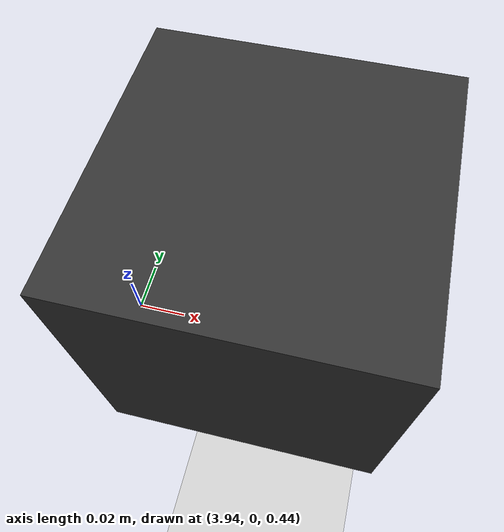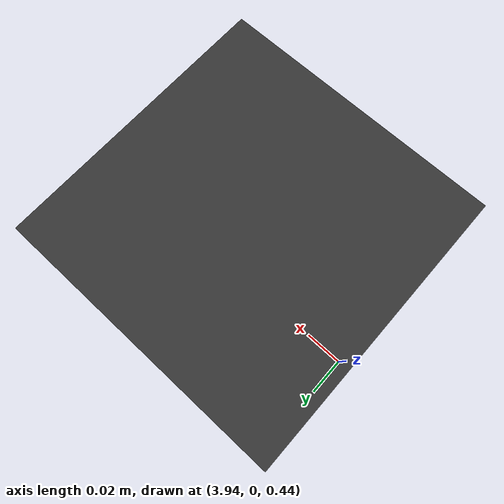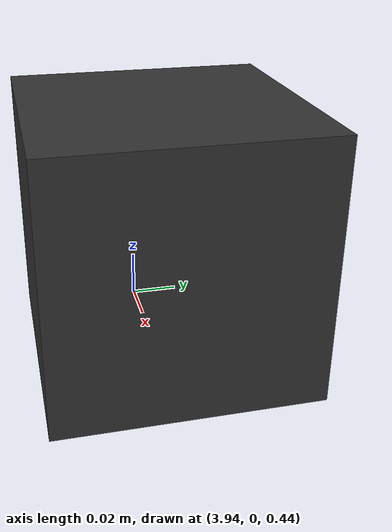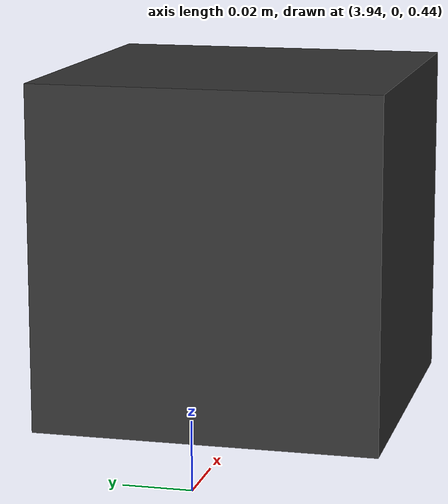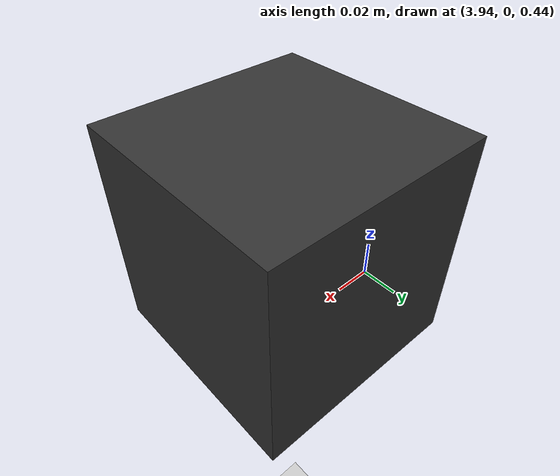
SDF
<?xml version="1.0" ?>
<sdf version="1.6">
  <world name="rgbd_world">

    <physics name="1ms" type="ignored">
      <max_step_size>0.001</max_step_size>
      <real_time_factor>1.0</real_time_factor>
    </physics>

    <plugin filename="gz-sim-physics-system"
            name="gz::sim::systems::Physics"/>
    <plugin filename="gz-sim-sensors-system"
            name="gz::sim::systems::Sensors">
      <render_engine>ogre2</render_engine>
    </plugin>
    <plugin filename="gz-sim-user-commands-system"
            name="gz::sim::systems::UserCommands"/>
    <plugin filename="gz-sim-scene-broadcaster-system"
            name="gz::sim::systems::SceneBroadcaster"/>

    <gui fullscreen="0">
      <plugin filename="MinimalScene" name="3D View">
        <gz-gui>
          <title>3D View</title>
          <property type="bool" key="showTitleBar">false</property>
          <property type="string" key="state">docked</property>
        </gz-gui>
        <engine>ogre2</engine>
        <scene>scene</scene>
        <ambient_light>0.4 0.4 0.4</ambient_light>
        <background_color>0.8 0.8 0.8</background_color>
        <camera_pose>6 -3 3 0 0.4 -2.7</camera_pose>
      </plugin>
      <plugin filename="EntityContextMenuPlugin" name="Entity context menu">
        <gz-gui>
          <property key="state" type="string">floating</property>
          <property key="width" type="double">5</property>
          <property key="height" type="double">5</property>
          <property key="showTitleBar" type="bool">false</property>
        </gz-gui>
      </plugin>
      <plugin filename="GzSceneManager" name="Scene Manager">
        <gz-gui>
          <property key="resizable" type="bool">false</property>
          <property key="width" type="double">5</property>
          <property key="height" type="double">5</property>
          <property key="state" type="string">floating</property>
          <property key="showTitleBar" type="bool">false</property>
        </gz-gui>
      </plugin>
      <plugin filename="InteractiveViewControl" name="Interactive view control">
        <gz-gui>
          <property key="resizable" type="bool">false</property>
          <property key="width" type="double">5</property>
          <property key="height" type="double">5</property>
          <property key="state" type="string">floating</property>
          <property key="showTitleBar" type="bool">false</property>
        </gz-gui>
      </plugin>
      <plugin filename="WorldControl" name="World control">
        <gz-gui>
          <title>World control</title>
          <property type="bool" key="showTitleBar">false</property>
          <property type="bool" key="resizable">false</property>
          <property type="double" key="height">72</property>
          <property type="double" key="z">1</property>
          <property type="string" key="state">floating</property>
          <anchors target="3D View">
            <line own="left" target="left"/>
            <line own="bottom" target="bottom"/>
          </anchors>
        </gz-gui>
        <play_pause>true</play_pause>
        <step>true</step>
        <start_paused>false</start_paused>
        <use_event>true</use_event>
      </plugin>
      <plugin filename="WorldStats" name="World stats">
        <gz-gui>
          <title>World stats</title>
          <property type="bool" key="showTitleBar">false</property>
          <property type="bool" key="resizable">false</property>
          <property type="double" key="height">110</property>
          <property type="double" key="width">290</property>
          <property type="double" key="z">1</property>
          <property type="string" key="state">floating</property>
          <anchors target="3D View">
            <line own="right" target="right"/>
            <line own="bottom" target="bottom"/>
          </anchors>
        </gz-gui>
        <sim_time>true</sim_time>
        <real_time>true</real_time>
        <real_time_factor>true</real_time_factor>
        <iterations>true</iterations>
      </plugin>
      <plugin filename="ComponentInspector" name="Component inspector">
        <gz-gui>
          <property type="string" key="state">docked</property>
        </gz-gui>
      </plugin>
      <plugin filename="EntityTree" name="Entity tree">
        <gz-gui>
          <property type="string" key="state">docked</property>
        </gz-gui>
      </plugin>

      <plugin filename="ImageDisplay" name="RGBD Image">
        <gz-gui>
          <title>RGBD: RGB</title>
          <property key="state" type="string">floating</property>
          <property type="double" key="width">350</property>
          <property type="double" key="height">315</property>
        </gz-gui>
        <topic>rgbd_camera/image</topic>
        <topic_picker>false</topic_picker>
      </plugin>
      <plugin filename="ImageDisplay" name="RGBD Depth">
        <gz-gui>
          <title>RGBD: Depth</title>
          <property key="state" type="string">floating</property>
          <property type="double" key="width">350</property>
          <property type="double" key="height">315</property>
          <property type="double" key="x">360</property>
        </gz-gui>
        <topic>rgbd_camera/depth_image</topic>
        <topic_picker>false</topic_picker>
      </plugin>
    </gui>

    <light type="directional" name="sun">
      <cast_shadows>true</cast_shadows>
      <pose>0 0 10 0 0 0</pose>
      <diffuse>0.8 0.8 0.8 1</diffuse>
      <specular>0.2 0.2 0.2 1</specular>
      <attenuation>
        <range>1000</range>
        <constant>0.9</constant>
        <linear>0.01</linear>
        <quadratic>0.001</quadratic>
      </attenuation>
      <direction>-0.5 0.1 -0.9</direction>
    </light>

    <model name="ground_plane">
      <static>true</static>
      <link name="link">
        <collision name="collision">
          <geometry>
            <box><size>20 20 0.1</size></box>
          </geometry>
        </collision>
        <visual name="visual">
          <geometry>
            <box><size>20 20 0.1</size></box>
          </geometry>
          <material>
            <ambient>0.8 0.8 0.8 1</ambient>
            <diffuse>0.8 0.8 0.8 1</diffuse>
            <specular>0.8 0.8 0.8 1</specular>
          </material>
        </visual>
      </link>
    </model>

    <model name="rgbd_camera">
      <pose>4 0 0.5 0 0 3.14159</pose>
      <static>true</static>
      <link name="link">
        <inertial>
          <mass>0.1</mass>
          <inertia>
            <ixx>0.000166667</ixx>
            <iyy>0.000166667</iyy>
            <izz>0.000166667</izz>
          </inertia>
        </inertial>
        <collision name="collision">
          <geometry><box><size>0.1 0.1 0.1</size></box></geometry>
        </collision>
        <visual name="visual">
          <geometry><box><size>0.1 0.1 0.1</size></box></geometry>
          <material>
            <ambient>0.2 0.2 0.2 1</ambient>
            <diffuse>0.2 0.2 0.2 1</diffuse>
          </material>
        </visual>
        <sensor name="rgbd_camera" type="rgbd_camera">
          <camera>
            <horizontal_fov>1.047</horizontal_fov>
            <image>
              <width>640</width>
              <height>480</height>
            </image>
            <clip>
              <near>0.1</near>
              <far>20.0</far>
            </clip>
          </camera>
          <always_on>1</always_on>
          <update_rate>10</update_rate>
          <visualize>true</visualize>
          <topic>rgbd_camera</topic>
        </sensor>
      </link>
    </model>

  </world>
</sdf>
